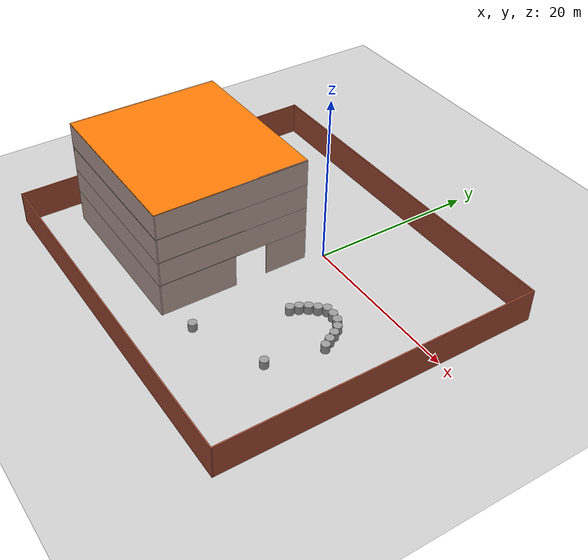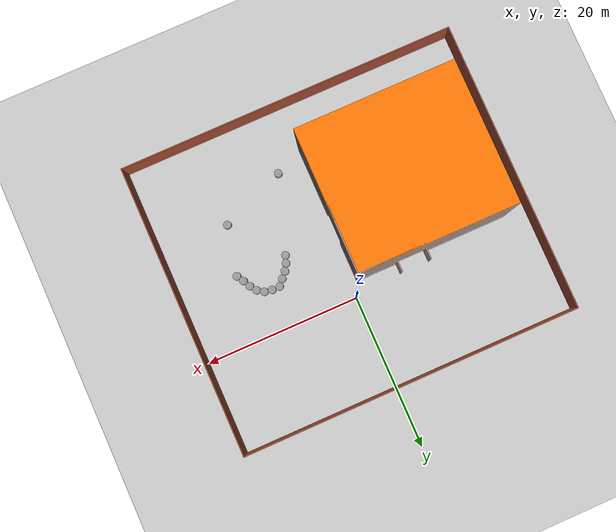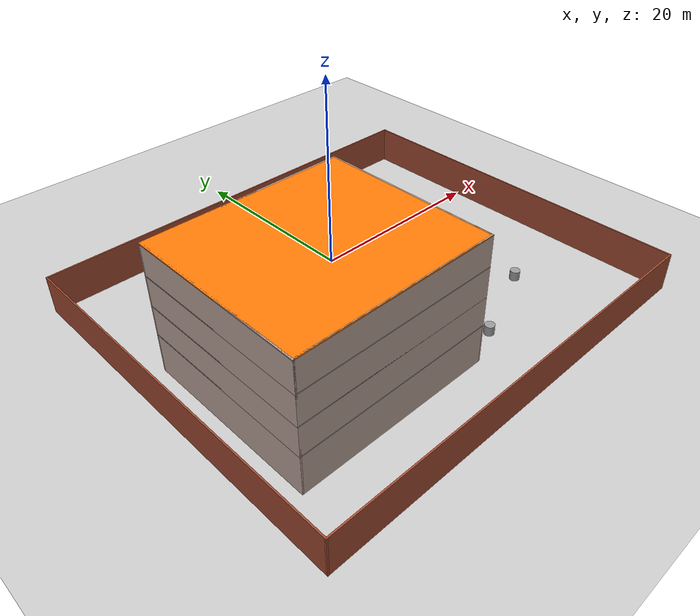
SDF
<sdf version="1.6">
 <world name="default">
  <light name="sun" type="directional">
   <pose>0 0 10 0 -0 0</pose>
   <diffuse>0.8 0.8 0.8 1</diffuse>
   <specular>0.2 0.2 0.2 1</specular>
   <attenuation>
    <range>1000</range>
    <constant>0.9</constant>
    <linear>0.01</linear>
    <quadratic>0.001</quadratic>
   </attenuation>
   <direction>-0.5 0.1 -0.9</direction>
  </light>
  <model name="ground_plane">
   <static>1</static>
   <link name="link">
    <collision name="collision">
     <geometry><plane><normal>0 0 1</normal><size>100 100</size></plane></geometry>
     <surface><friction><ode><mu>100</mu><mu2>50</mu2></ode></friction></surface>
    </collision>
    <visual name="visual">
     <cast_shadows>0</cast_shadows>
     <geometry><plane><normal>0 0 1</normal><size>100 100</size></plane></geometry>
     <material>
      <script><uri>file://media/materials/scripts/gazebo.material</uri><name>Gazebo/Grey</name></script>
     </material>
    </visual>
   </link>
  </model>
  <gravity>0 0 -9.8</gravity>
  <magnetic_field>6e-06 2.3e-05 -4.2e-05</magnetic_field>
  <atmosphere type="adiabatic"/>
  <physics name="default_physics" default="0" type="ode">
   <max_step_size>0.001</max_step_size>
   <real_time_factor>1</real_time_factor>
   <real_time_update_rate>1000</real_time_update_rate>
  </physics>
  <scene><ambient>0.4 0.4 0.4 1</ambient><background>0.7 0.7 0.7 1</background><shadows>1</shadows></scene>
  <audio><device>default</device></audio>
  <spherical_coordinates>
   <surface_model>EARTH_WGS84</surface_model>
   <latitude_deg>0</latitude_deg>
   <longitude_deg>0</longitude_deg>
   <elevation>0</elevation>
   <heading_deg>0</heading_deg>
  </spherical_coordinates>
  <model name="building2">
   <pose>-11 -10.325 0 0 -0 0</pose>
   <link name="Floor_0">
    <collision name="Floor_0_Collision">
     <geometry><box><size>20.15 18.15 0.1</size></box></geometry>
     <pose>0 0 0.05 0 -0 0</pose>
    </collision>
    <visual name="Floor_0_Visual">
     <pose>0 0 0.05 0 -0 0</pose>
     <geometry><box><size>20.15 18.15 0.1</size></box></geometry>
     <material>
      <script><uri>file://media/materials/scripts/gazebo.material</uri><name>Gazebo/Grey</name></script>
      <ambient>1 1 1 1</ambient>
     </material>
     <meta><layer>1</layer></meta>
    </visual>
    <pose>-0 -0.675 4 0 -0 0</pose>
   </link>
   <link name="Floor_2">
    <collision name="Floor_2_Collision">
     <geometry><box><size>20.15 18.15 0.1</size></box></geometry>
     <pose>0 0 0.05 0 -0 0</pose>
    </collision>
    <visual name="Floor_2_Visual">
     <pose>0 0 0.05 0 -0 0</pose>
     <geometry><box><size>20.15 18.15 0.1</size></box></geometry>
     <material>
      <script><uri>file://media/materials/scripts/gazebo.material</uri><name>Gazebo/Grey</name></script>
      <ambient>1 1 1 1</ambient>
     </material>
     <meta><layer>2</layer></meta>
    </visual>
    <pose>-0 -0.675 7 0 -0 0</pose>
   </link>
   <link name="Floor_3">
    <collision name="Floor_3_Collision">
     <geometry><box><size>20.15 18.15 0.1</size></box></geometry>
     <pose>0 0 0.05 0 -0 0</pose>
    </collision>
    <visual name="Floor_3_Visual">
     <pose>0 0 0.05 0 -0 0</pose>
     <geometry><box><size>20.15 18.15 0.1</size></box></geometry>
     <material>
      <script><uri>file://media/materials/scripts/gazebo.material</uri><name>Gazebo/Grey</name></script>
      <ambient>1 1 1 1</ambient>
     </material>
     <meta><layer>3</layer></meta>
    </visual>
    <pose>-0 -0.675 10 0 -0 0</pose>
   </link>
   <link name="Floor_8">
    <collision name="Floor_8_Collision">
     <geometry><box><size>20.15 18.15 0.1</size></box></geometry>
     <pose>0 0 0.05 0 -0 0</pose>
    </collision>
    <visual name="Floor_8_Visual">
     <pose>0 0 0.05 0 -0 0</pose>
     <geometry><box><size>20.15 18.15 0.1</size></box></geometry>
     <material>
      <script><uri>file://media/materials/scripts/gazebo.material</uri><name>Gazebo/Grey</name></script>
      <ambient>0.996078 0.47451 0.0196078 1</ambient>
     </material>
     <meta><layer>4</layer></meta>
    </visual>
    <pose>-0 -0.675 13 0 -0 0</pose>
   </link>
   <link name="Wall_11">
    <collision name="Wall_11_Collision">
     <geometry><box><size>1.5 0.15 4</size></box></geometry>
     <pose>0 0 2 0 -0 0</pose>
    </collision>
    <visual name="Wall_11_Visual">
     <pose>0 0 2 0 -0 0</pose>
     <geometry><box><size>1.5 0.15 4</size></box></geometry>
     <material>
      <script><uri>file://media/materials/scripts/gazebo.material</uri><name>Gazebo/Grey</name></script>
      <ambient>0.760784 0.662745 0.627451 1</ambient>
     </material>
     <meta><layer>0</layer></meta>
    </visual>
    <pose>0.8 9 0 0 -0 -1.5708</pose>
   </link>
   <link name="Wall_12">
    <collision name="Wall_12_Collision">
     <geometry><box><size>10.95 0.15 4</size></box></geometry>
     <pose>0 0 2 0 -0 0</pose>
    </collision>
    <visual name="Wall_12_Visual">
     <pose>0 0 2 0 -0 0</pose>
     <geometry><box><size>10.95 0.15 4</size></box></geometry>
     <material>
      <script><uri>file://media/materials/scripts/gazebo.material</uri><name>Gazebo/Grey</name></script>
      <ambient>0.760784 0.662745 0.627451 1</ambient>
     </material>
     <meta><layer>0</layer></meta>
    </visual>
    <pose>-4.6 8.325 0 0 -0 3.14159</pose>
   </link>
   <link name="Wall_14">
    <collision name="Wall_14_Collision">
     <geometry><box><size>18.15 0.15 4</size></box></geometry>
     <pose>0 0 2 0 -0 0</pose>
    </collision>
    <visual name="Wall_14_Visual">
     <pose>0 0 2 0 -0 0</pose>
     <geometry><box><size>18.15 0.15 4</size></box></geometry>
     <material>
      <script><uri>file://media/materials/scripts/gazebo.material</uri><name>Gazebo/Grey</name></script>
      <ambient>0.760784 0.662745 0.627451 1</ambient>
     </material>
     <meta><layer>0</layer></meta>
    </visual>
    <pose>-10 -0.675 0 0 -0 -1.5708</pose>
   </link>
   <link name="Wall_16">
    <collision name="Wall_16_Collision">
     <geometry><box><size>20.15 0.15 4</size></box></geometry>
     <pose>0 0 2 0 -0 0</pose>
    </collision>
    <visual name="Wall_16_Visual">
     <pose>0 0 2 0 -0 0</pose>
     <geometry><box><size>20.15 0.15 4</size></box></geometry>
     <material>
      <script><uri>file://media/materials/scripts/gazebo.material</uri><name>Gazebo/Grey</name></script>
      <ambient>0.760784 0.662745 0.627451 1</ambient>
     </material>
     <meta><layer>0</layer></meta>
    </visual>
    <pose>-0 -9.675 0 0 -0 0</pose>
   </link>
   <link name="Wall_24">
    <collision name="Wall_24_Collision">
     <geometry><box><size>18.15 0.15 3</size></box></geometry>
     <pose>0 0 1.5 0 -0 0</pose>
    </collision>
    <visual name="Wall_24_Visual">
     <pose>0 0 1.5 0 -0 0</pose>
     <geometry><box><size>18.15 0.15 3</size></box></geometry>
     <material>
      <script><uri>file://media/materials/scripts/gazebo.material</uri><name>Gazebo/Grey</name></script>
      <ambient>0.760784 0.662745 0.627451 1</ambient>
     </material>
     <meta><layer>1</layer></meta>
    </visual>
    <pose>-10 -0.675 4 0 -0 -1.5708</pose>
   </link>
   <link name="Wall_25">
    <collision name="Wall_25_Collision">
     <geometry><box><size>20.15 0.15 3</size></box></geometry>
     <pose>0 0 1.5 0 -0 0</pose>
    </collision>
    <visual name="Wall_25_Visual">
     <pose>0 0 1.5 0 -0 0</pose>
     <geometry><box><size>20.15 0.15 3</size></box></geometry>
     <material>
      <script><uri>file://media/materials/scripts/gazebo.material</uri><name>Gazebo/Grey</name></script>
      <ambient>0.760784 0.662745 0.627451 1</ambient>
     </material>
     <meta><layer>1</layer></meta>
    </visual>
    <pose>-0 -9.675 4 0 -0 0</pose>
   </link>
   <link name="Wall_31">
    <collision name="Wall_31_Collision">
     <geometry><box><size>20.15 0.15 3</size></box></geometry>
     <pose>0 0 1.5 0 -0 0</pose>
    </collision>
    <visual name="Wall_31_Visual">
     <pose>0 0 1.5 0 -0 0</pose>
     <geometry><box><size>20.15 0.15 3</size></box></geometry>
     <material>
      <script><uri>file://media/materials/scripts/gazebo.material</uri><name>Gazebo/Grey</name></script>
      <ambient>0.760784 0.662745 0.627451 1</ambient>
     </material>
     <meta><layer>1</layer></meta>
    </visual>
    <pose>-0 8.325 4 0 -0 0</pose>
   </link>
   <link name="Wall_33">
    <collision name="Wall_33_Collision">
     <geometry><box><size>18 0.15 3</size></box></geometry>
     <pose>0 0 1.5 0 -0 0</pose>
    </collision>
    <visual name="Wall_33_Visual">
     <pose>0 0 1.5 0 -0 0</pose>
     <geometry><box><size>18 0.15 3</size></box></geometry>
     <material>
      <script><uri>file://media/materials/scripts/gazebo.material</uri><name>Gazebo/Grey</name></script>
      <ambient>0.760784 0.662745 0.627451 1</ambient>
     </material>
     <meta><layer>1</layer></meta>
    </visual>
    <pose>10 -0.6 4 0 -0 -1.5708</pose>
   </link>
   <link name="Wall_4">
    <collision name="Wall_4_Collision">
     <geometry><box><size>5.15 0.15 4</size></box></geometry>
     <pose>0 0 2 0 -0 0</pose>
    </collision>
    <visual name="Wall_4_Visual">
     <pose>0 0 2 0 -0 0</pose>
     <geometry><box><size>5.15 0.15 4</size></box></geometry>
     <material>
      <script><uri>file://media/materials/scripts/gazebo.material</uri><name>Gazebo/Grey</name></script>
      <ambient>0.760784 0.662745 0.627451 1</ambient>
     </material>
     <meta><layer>0</layer></meta>
    </visual>
    <pose>10 5.825 0 0 -0 -1.5708</pose>
   </link>
   <link name="Wall_42">
    <collision name="Wall_42_Collision">
     <geometry><box><size>18.15 0.15 3</size></box></geometry>
     <pose>0 0 1.5 0 -0 0</pose>
    </collision>
    <visual name="Wall_42_Visual">
     <pose>0 0 1.5 0 -0 0</pose>
     <geometry><box><size>18.15 0.15 3</size></box></geometry>
     <material>
      <script><uri>file://media/materials/scripts/gazebo.material</uri><name>Gazebo/Grey</name></script>
      <ambient>0.760784 0.662745 0.627451 1</ambient>
     </material>
     <meta><layer>2</layer></meta>
    </visual>
    <pose>-10 -0.675 7 0 -0 -1.5708</pose>
   </link>
   <link name="Wall_43">
    <collision name="Wall_43_Collision">
     <geometry><box><size>20.15 0.15 3</size></box></geometry>
     <pose>0 0 1.5 0 -0 0</pose>
    </collision>
    <visual name="Wall_43_Visual">
     <pose>0 0 1.5 0 -0 0</pose>
     <geometry><box><size>20.15 0.15 3</size></box></geometry>
     <material>
      <script><uri>file://media/materials/scripts/gazebo.material</uri><name>Gazebo/Grey</name></script>
      <ambient>0.760784 0.662745 0.627451 1</ambient>
     </material>
     <meta><layer>2</layer></meta>
    </visual>
    <pose>-0 -9.675 7 0 -0 0</pose>
   </link>
   <link name="Wall_44">
    <collision name="Wall_44_Collision">
     <geometry><box><size>20.15 0.15 3</size></box></geometry>
     <pose>0 0 1.5 0 -0 0</pose>
    </collision>
    <visual name="Wall_44_Visual">
     <pose>0 0 1.5 0 -0 0</pose>
     <geometry><box><size>20.15 0.15 3</size></box></geometry>
     <material>
      <script><uri>file://media/materials/scripts/gazebo.material</uri><name>Gazebo/Grey</name></script>
      <ambient>0.760784 0.662745 0.627451 1</ambient>
     </material>
     <meta><layer>2</layer></meta>
    </visual>
    <pose>-0 8.325 7 0 -0 0</pose>
   </link>
   <link name="Wall_45">
    <collision name="Wall_45_Collision">
     <geometry><box><size>18 0.15 3</size></box></geometry>
     <pose>0 0 1.5 0 -0 0</pose>
    </collision>
    <visual name="Wall_45_Visual">
     <pose>0 0 1.5 0 -0 0</pose>
     <geometry><box><size>18 0.15 3</size></box></geometry>
     <material>
      <script><uri>file://media/materials/scripts/gazebo.material</uri><name>Gazebo/Grey</name></script>
      <ambient>0.760784 0.662745 0.627451 1</ambient>
     </material>
     <meta><layer>2</layer></meta>
    </visual>
    <pose>10 -0.6 7 0 -0 -1.5708</pose>
   </link>
   <link name="Wall_46">
    <collision name="Wall_46_Collision">
     <geometry><box><size>18.15 0.15 3</size></box></geometry>
     <pose>0 0 1.5 0 -0 0</pose>
    </collision>
    <visual name="Wall_46_Visual">
     <pose>0 0 1.5 0 -0 0</pose>
     <geometry><box><size>18.15 0.15 3</size></box></geometry>
     <material>
      <script><uri>file://media/materials/scripts/gazebo.material</uri><name>Gazebo/Grey</name></script>
      <ambient>0.760784 0.662745 0.627451 1</ambient>
     </material>
     <meta><layer>3</layer></meta>
    </visual>
    <pose>-10 -0.675 10 0 -0 -1.5708</pose>
   </link>
   <link name="Wall_47">
    <collision name="Wall_47_Collision">
     <geometry><box><size>20.15 0.15 3</size></box></geometry>
     <pose>0 0 1.5 0 -0 0</pose>
    </collision>
    <visual name="Wall_47_Visual">
     <pose>0 0 1.5 0 -0 0</pose>
     <geometry><box><size>20.15 0.15 3</size></box></geometry>
     <material>
      <script><uri>file://media/materials/scripts/gazebo.material</uri><name>Gazebo/Grey</name></script>
      <ambient>0.760784 0.662745 0.627451 1</ambient>
     </material>
     <meta><layer>3</layer></meta>
    </visual>
    <pose>-0 -9.675 10 0 -0 0</pose>
   </link>
   <link name="Wall_48">
    <collision name="Wall_48_Collision">
     <geometry><box><size>20.15 0.15 3</size></box></geometry>
     <pose>0 0 1.5 0 -0 0</pose>
    </collision>
    <visual name="Wall_48_Visual">
     <pose>0 0 1.5 0 -0 0</pose>
     <geometry><box><size>20.15 0.15 3</size></box></geometry>
     <material>
      <script><uri>file://media/materials/scripts/gazebo.material</uri><name>Gazebo/Grey</name></script>
      <ambient>0.760784 0.662745 0.627451 1</ambient>
     </material>
     <meta><layer>3</layer></meta>
    </visual>
    <pose>-0 8.325 10 0 -0 0</pose>
   </link>
   <link name="Wall_49">
    <collision name="Wall_49_Collision">
     <geometry><box><size>18 0.15 3</size></box></geometry>
     <pose>0 0 1.5 0 -0 0</pose>
    </collision>
    <visual name="Wall_49_Visual">
     <pose>0 0 1.5 0 -0 0</pose>
     <geometry><box><size>18 0.15 3</size></box></geometry>
     <material>
      <script><uri>file://media/materials/scripts/gazebo.material</uri><name>Gazebo/Grey</name></script>
      <ambient>0.760784 0.662745 0.627451 1</ambient>
     </material>
     <meta><layer>3</layer></meta>
    </visual>
    <pose>10 -0.6 10 0 -0 -1.5708</pose>
   </link>
   <link name="Wall_6">
    <collision name="Wall_6_Collision">
     <geometry><box><size>9.15 0.15 4</size></box></geometry>
     <pose>0 0 2 0 -0 0</pose>
    </collision>
    <visual name="Wall_6_Visual">
     <pose>0 0 2 0 -0 0</pose>
     <geometry><box><size>9.15 0.15 4</size></box></geometry>
     <material>
      <script><uri>file://media/materials/scripts/gazebo.material</uri><name>Gazebo/Grey</name></script>
      <ambient>0.760784 0.662745 0.627451 1</ambient>
     </material>
     <meta><layer>0</layer></meta>
    </visual>
    <pose>10 -5.175 0 0 -0 -1.5708</pose>
   </link>
   <link name="Wall_76">
    <collision name="Wall_76_Collision">
     <geometry><box><size>18.15 0.15 0.1</size></box></geometry>
     <pose>0 0 0.05 0 -0 0</pose>
    </collision>
    <visual name="Wall_76_Visual">
     <pose>0 0 0.05 0 -0 0</pose>
     <geometry><box><size>18.15 0.15 0.1</size></box></geometry>
     <material>
      <script><uri>file://media/materials/scripts/gazebo.material</uri><name>Gazebo/Grey</name></script>
      <ambient>0.760784 0.662745 0.627451 1</ambient>
     </material>
     <meta><layer>4</layer></meta>
    </visual>
    <pose>-10 -0.675 13 0 -0 -1.5708</pose>
   </link>
   <link name="Wall_77">
    <collision name="Wall_77_Collision">
     <geometry><box><size>20.15 0.15 0.1</size></box></geometry>
     <pose>0 0 0.05 0 -0 0</pose>
    </collision>
    <visual name="Wall_77_Visual">
     <pose>0 0 0.05 0 -0 0</pose>
     <geometry><box><size>20.15 0.15 0.1</size></box></geometry>
     <material>
      <script><uri>file://media/materials/scripts/gazebo.material</uri><name>Gazebo/Grey</name></script>
      <ambient>0.760784 0.662745 0.627451 1</ambient>
     </material>
     <meta><layer>4</layer></meta>
    </visual>
    <pose>-0 -9.675 13 0 -0 0</pose>
   </link>
   <link name="Wall_78">
    <collision name="Wall_78_Collision">
     <geometry><box><size>20.15 0.15 0.1</size></box></geometry>
     <pose>0 0 0.05 0 -0 0</pose>
    </collision>
    <visual name="Wall_78_Visual">
     <pose>0 0 0.05 0 -0 0</pose>
     <geometry><box><size>20.15 0.15 0.1</size></box></geometry>
     <material>
      <script><uri>file://media/materials/scripts/gazebo.material</uri><name>Gazebo/Grey</name></script>
      <ambient>0.760784 0.662745 0.627451 1</ambient>
     </material>
     <meta><layer>4</layer></meta>
    </visual>
    <pose>-0 8.325 13 0 -0 0</pose>
   </link>
   <link name="Wall_79">
    <collision name="Wall_79_Collision">
     <geometry><box><size>18 0.15 0.1</size></box></geometry>
     <pose>0 0 0.05 0 -0 0</pose>
    </collision>
    <visual name="Wall_79_Visual">
     <pose>0 0 0.05 0 -0 0</pose>
     <geometry><box><size>18 0.15 0.1</size></box></geometry>
     <material>
      <script><uri>file://media/materials/scripts/gazebo.material</uri><name>Gazebo/Grey</name></script>
      <ambient>0.760784 0.662745 0.627451 1</ambient>
     </material>
     <meta><layer>4</layer></meta>
    </visual>
    <pose>10 -0.6 13 0 -0 -1.5708</pose>
   </link>
   <link name="Wall_8">
    <collision name="Wall_8_Collision">
     <geometry><box><size>5.5 0.15 4</size></box></geometry>
     <pose>0 0 2 0 -0 0</pose>
    </collision>
    <visual name="Wall_8_Visual">
     <pose>0 0 2 0 -0 0</pose>
     <geometry><box><size>5.5 0.15 4</size></box></geometry>
     <material>
      <script><uri>file://media/materials/scripts/gazebo.material</uri><name>Gazebo/Grey</name></script>
      <ambient>0.760784 0.662745 0.627451 1</ambient>
     </material>
     <meta><layer>0</layer></meta>
    </visual>
    <pose>7.325 8.325 0 0 -0 3.14159</pose>
   </link>
   <link name="Wall_9">
    <collision name="Wall_9_Collision">
     <geometry><box><size>1.5 0.15 4</size></box></geometry>
     <pose>0 0 2 0 -0 0</pose>
    </collision>
    <visual name="Wall_9_Visual">
     <pose>0 0 2 0 -0 0</pose>
     <geometry><box><size>1.5 0.15 4</size></box></geometry>
     <material>
      <script><uri>file://media/materials/scripts/gazebo.material</uri><name>Gazebo/Grey</name></script>
      <ambient>0.760784 0.662745 0.627451 1</ambient>
     </material>
     <meta><layer>0</layer></meta>
    </visual>
    <pose>4.65 9 0 0 -0 1.5708</pose>
   </link>
   <static>1</static>
  </model>
  <model name="wall11">
   <pose>-2 -7 0 0 -0 0</pose>
   <link name="Wall_0">
    <collision name="Wall_0_Collision">
     <geometry><box><size>44.15 0.15 4</size></box></geometry>
     <pose>0 0 2 0 -0 0</pose>
    </collision>
    <visual name="Wall_0_Visual">
     <pose>0 0 2 0 -0 0</pose>
     <geometry><box><size>44.15 0.15 4</size></box></geometry>
     <material>
      <script><uri>file://media/materials/scripts/gazebo.material</uri><name>Gazebo/Bricks</name></script>
      <ambient>1 1 1 1</ambient>
     </material>
     <meta><layer>0</layer></meta>
    </visual>
    <pose>0 19 0 0 -0 0</pose>
   </link>
   <link name="Wall_2">
    <collision name="Wall_2_Collision">
     <geometry><box><size>38.15 0.15 4</size></box></geometry>
     <pose>0 0 2 0 -0 0</pose>
    </collision>
    <visual name="Wall_2_Visual">
     <pose>0 0 2 0 -0 0</pose>
     <geometry><box><size>38.15 0.15 4</size></box></geometry>
     <material>
      <script><uri>file://media/materials/scripts/gazebo.material</uri><name>Gazebo/Bricks</name></script>
      <ambient>1 1 1 1</ambient>
     </material>
     <meta><layer>0</layer></meta>
    </visual>
    <pose>22 0 0 0 -0 -1.5708</pose>
   </link>
   <link name="Wall_4">
    <collision name="Wall_4_Collision">
     <geometry><box><size>44.15 0.15 4</size></box></geometry>
     <pose>0 0 2 0 -0 0</pose>
    </collision>
    <visual name="Wall_4_Visual">
     <pose>0 0 2 0 -0 0</pose>
     <geometry><box><size>44.15 0.15 4</size></box></geometry>
     <material>
      <script><uri>file://media/materials/scripts/gazebo.material</uri><name>Gazebo/Bricks</name></script>
      <ambient>1 1 1 1</ambient>
     </material>
     <meta><layer>0</layer></meta>
    </visual>
    <pose>0 -19 0 0 -0 3.14159</pose>
   </link>
   <link name="Wall_6">
    <collision name="Wall_6_Collision">
     <geometry><box><size>38.15 0.15 4</size></box></geometry>
     <pose>0 0 2 0 -0 0</pose>
    </collision>
    <visual name="Wall_6_Visual">
     <pose>0 0 2 0 -0 0</pose>
     <geometry><box><size>38.15 0.15 4</size></box></geometry>
     <material>
      <script><uri>file://media/materials/scripts/gazebo.material</uri><name>Gazebo/Bricks</name></script>
      <ambient>1 1 1 1</ambient>
     </material>
     <meta><layer>0</layer></meta>
    </visual>
    <pose>-22 0 0 0 -0 1.5708</pose>
   </link>
   <static>1</static>
  </model>
  <model name="unit_cylinder">
   <pose>5.9225 -8.49829 0.499992 -3e-06 3e-06 -0.010663</pose>
   <link name="link">
    <inertial>
     <mass>1</mass>
     <inertia><ixx>0.145833</ixx><ixy>0</ixy><ixz>0</ixz><iyy>0.145833</iyy><iyz>0</iyz><izz>0.125</izz></inertia>
    </inertial>
    <collision name="collision">
     <geometry><cylinder><radius>0.5</radius><length>1</length></cylinder></geometry>
    </collision>
    <visual name="visual">
     <geometry><cylinder><radius>0.5</radius><length>1</length></cylinder></geometry>
     <material>
      <script><name>Gazebo/Grey</name><uri>file://media/materials/scripts/gazebo.material</uri></script>
     </material>
    </visual>
   </link>
  </model>
  <model name="unit_cylinder_0">
   <pose>6.26111 -7.55722 0.499994 -4e-06 -3e-06 0.004743</pose>
   <link name="link">
    <inertial>
     <mass>1</mass>
     <inertia><ixx>0.145833</ixx><ixy>0</ixy><ixz>0</ixz><iyy>0.145833</iyy><iyz>0</iyz><izz>0.125</izz></inertia>
    </inertial>
    <collision name="collision">
     <geometry><cylinder><radius>0.5</radius><length>1</length></cylinder></geometry>
    </collision>
    <visual name="visual">
     <geometry><cylinder><radius>0.5</radius><length>1</length></cylinder></geometry>
     <material>
      <script><name>Gazebo/Grey</name><uri>file://media/materials/scripts/gazebo.material</uri></script>
     </material>
    </visual>
   </link>
  </model>
  <model name="unit_cylinder_1">
   <pose>6.78428 -6.70401 0.499995 3e-06 -3e-06 -0.00587</pose>
   <link name="link">
    <inertial>
     <mass>1</mass>
     <inertia><ixx>0.145833</ixx><ixy>0</ixy><ixz>0</ixz><iyy>0.145833</iyy><iyz>0</iyz><izz>0.125</izz></inertia>
    </inertial>
    <collision name="collision">
     <geometry><cylinder><radius>0.5</radius><length>1</length></cylinder></geometry>
    </collision>
    <visual name="visual">
     <geometry><cylinder><radius>0.5</radius><length>1</length></cylinder></geometry>
     <material>
      <script><name>Gazebo/Grey</name><uri>file://media/materials/scripts/gazebo.material</uri></script>
     </material>
    </visual>
   </link>
  </model>
  <model name="unit_cylinder_2">
   <pose>7.4652 -5.97135 0.499997 4e-06 3e-06 0.025774</pose>
   <link name="link">
    <inertial>
     <mass>1</mass>
     <inertia><ixx>0.145833</ixx><ixy>0</ixy><ixz>0</ixz><iyy>0.145833</iyy><iyz>0</iyz><izz>0.125</izz></inertia>
    </inertial>
    <collision name="collision">
     <geometry><cylinder><radius>0.5</radius><length>1</length></cylinder></geometry>
    </collision>
    <visual name="visual">
     <geometry><cylinder><radius>0.5</radius><length>1</length></cylinder></geometry>
     <material>
      <script><name>Gazebo/Grey</name><uri>file://media/materials/scripts/gazebo.material</uri></script>
     </material>
    </visual>
   </link>
  </model>
  <model name="unit_cylinder_3">
   <pose>8.13767 -5.23053 0.499991 0 -0 0.011237</pose>
   <link name="link">
    <inertial>
     <mass>1</mass>
     <inertia><ixx>0.145833</ixx><ixy>0</ixy><ixz>0</ixz><iyy>0.145833</iyy><iyz>0</iyz><izz>0.125</izz></inertia>
    </inertial>
    <collision name="collision">
     <geometry><cylinder><radius>0.5</radius><length>1</length></cylinder></geometry>
    </collision>
    <visual name="visual">
     <geometry><cylinder><radius>0.5</radius><length>1</length></cylinder></geometry>
     <material>
      <script><name>Gazebo/Grey</name><uri>file://media/materials/scripts/gazebo.material</uri></script>
     </material>
    </visual>
   </link>
  </model>
  <model name="unit_cylinder_4">
   <pose>9.13816 -5.21171 0.499994 -3e-06 -4e-06 -0.085881</pose>
   <link name="link">
    <inertial>
     <mass>1</mass>
     <inertia><ixx>0.145833</ixx><ixy>0</ixy><ixz>0</ixz><iyy>0.145833</iyy><iyz>0</iyz><izz>0.125</izz></inertia>
    </inertial>
    <collision name="collision">
     <geometry><cylinder><radius>0.5</radius><length>1</length></cylinder></geometry>
    </collision>
    <visual name="visual">
     <geometry><cylinder><radius>0.5</radius><length>1</length></cylinder></geometry>
     <material>
      <script><name>Gazebo/Grey</name><uri>file://media/materials/scripts/gazebo.material</uri></script>
     </material>
    </visual>
   </link>
  </model>
  <model name="unit_cylinder_5">
   <pose>10.1223 -5.38916 0.499991 -0 -0 -0.032673</pose>
   <link name="link">
    <inertial>
     <mass>1</mass>
     <inertia><ixx>0.145833</ixx><ixy>0</ixy><ixz>0</ixz><iyy>0.145833</iyy><iyz>0</iyz><izz>0.125</izz></inertia>
    </inertial>
    <collision name="collision">
     <geometry><cylinder><radius>0.5</radius><length>1</length></cylinder></geometry>
    </collision>
    <visual name="visual">
     <geometry><cylinder><radius>0.5</radius><length>1</length></cylinder></geometry>
     <material>
      <script><name>Gazebo/Grey</name><uri>file://media/materials/scripts/gazebo.material</uri></script>
     </material>
    </visual>
   </link>
  </model>
  <model name="unit_cylinder_6">
   <pose>10.9516 -5.95126 0.499997 4e-06 -3e-06 -0.013535</pose>
   <link name="link">
    <inertial>
     <mass>1</mass>
     <inertia><ixx>0.145833</ixx><ixy>0</ixy><ixz>0</ixz><iyy>0.145833</iyy><iyz>0</iyz><izz>0.125</izz></inertia>
    </inertial>
    <collision name="collision">
     <geometry><cylinder><radius>0.5</radius><length>1</length></cylinder></geometry>
    </collision>
    <visual name="visual">
     <geometry><cylinder><radius>0.5</radius><length>1</length></cylinder></geometry>
     <material>
      <script><name>Gazebo/Grey</name><uri>file://media/materials/scripts/gazebo.material</uri></script>
     </material>
    </visual>
   </link>
  </model>
  <model name="unit_cylinder_7">
   <pose>11.5203 -6.77493 0.499999 -2e-06 1e-06 0.023031</pose>
   <link name="link">
    <inertial>
     <mass>1</mass>
     <inertia><ixx>0.145833</ixx><ixy>0</ixy><ixz>0</ixz><iyy>0.145833</iyy><iyz>0</iyz><izz>0.125</izz></inertia>
    </inertial>
    <collision name="collision">
     <geometry><cylinder><radius>0.5</radius><length>1</length></cylinder></geometry>
    </collision>
    <visual name="visual">
     <geometry><cylinder><radius>0.5</radius><length>1</length></cylinder></geometry>
     <material>
      <script><name>Gazebo/Grey</name><uri>file://media/materials/scripts/gazebo.material</uri></script>
     </material>
    </visual>
   </link>
  </model>
  <model name="unit_cylinder_8">
   <pose>11.9919 -7.67652 0.49999 0 -0 0.484487</pose>
   <link name="link">
    <inertial>
     <mass>1</mass>
     <inertia><ixx>0.145833</ixx><ixy>0</ixy><ixz>0</ixz><iyy>0.145833</iyy><iyz>0</iyz><izz>0.125</izz></inertia>
    </inertial>
    <collision name="collision">
     <geometry><cylinder><radius>0.5</radius><length>1</length></cylinder></geometry>
    </collision>
    <visual name="visual">
     <geometry><cylinder><radius>0.5</radius><length>1</length></cylinder></geometry>
     <material>
      <script><name>Gazebo/Grey</name><uri>file://media/materials/scripts/gazebo.material</uri></script>
     </material>
    </visual>
   </link>
  </model>
  <model name="unit_cylinder_9">
   <pose>12.4919 -8.54257 0.5 0 0 -0.000881</pose>
   <link name="link">
    <inertial>
     <mass>1</mass>
     <inertia><ixx>0.145833</ixx><ixy>0</ixy><ixz>0</ixz><iyy>0.145833</iyy><iyz>0</iyz><izz>0.125</izz></inertia>
    </inertial>
    <collision name="collision">
     <geometry><cylinder><radius>0.5</radius><length>1</length></cylinder></geometry>
    </collision>
    <visual name="visual">
     <geometry><cylinder><radius>0.5</radius><length>1</length></cylinder></geometry>
     <material>
      <script><name>Gazebo/Grey</name><uri>file://media/materials/scripts/gazebo.material</uri></script>
     </material>
    </visual>
   </link>
  </model>
  <model name="unit_cylinder_10">
   <pose>2.61988 -18.3426 0.499993 -3e-06 -4e-06 -0</pose>
   <link name="link">
    <inertial>
     <mass>1</mass>
     <inertia><ixx>0.145833</ixx><ixy>0</ixy><ixz>0</ixz><iyy>0.145833</iyy><iyz>0</iyz><izz>0.125</izz></inertia>
    </inertial>
    <collision name="collision">
     <geometry><cylinder><radius>0.5</radius><length>1</length></cylinder></geometry>
    </collision>
    <visual name="visual">
     <geometry><cylinder><radius>0.5</radius><length>1</length></cylinder></geometry>
     <material>
      <script><name>Gazebo/Grey</name><uri>file://media/materials/scripts/gazebo.material</uri></script>
     </material>
    </visual>
   </link>
  </model>
  <model name="unit_cylinder_11">
   <pose>11.0382 -14.9332 0.499997 3e-06 4e-06 -0</pose>
   <link name="link">
    <inertial>
     <mass>1</mass>
     <inertia><ixx>0.145833</ixx><ixy>0</ixy><ixz>0</ixz><iyy>0.145833</iyy><iyz>0</iyz><izz>0.125</izz></inertia>
    </inertial>
    <collision name="collision">
     <geometry><cylinder><radius>0.5</radius><length>1</length></cylinder></geometry>
    </collision>
    <visual name="visual">
     <geometry><cylinder><radius>0.5</radius><length>1</length></cylinder></geometry>
     <material>
      <script><name>Gazebo/Grey</name><uri>file://media/materials/scripts/gazebo.material</uri></script>
     </material>
    </visual>
   </link>
  </model>
 </world>
</sdf>
